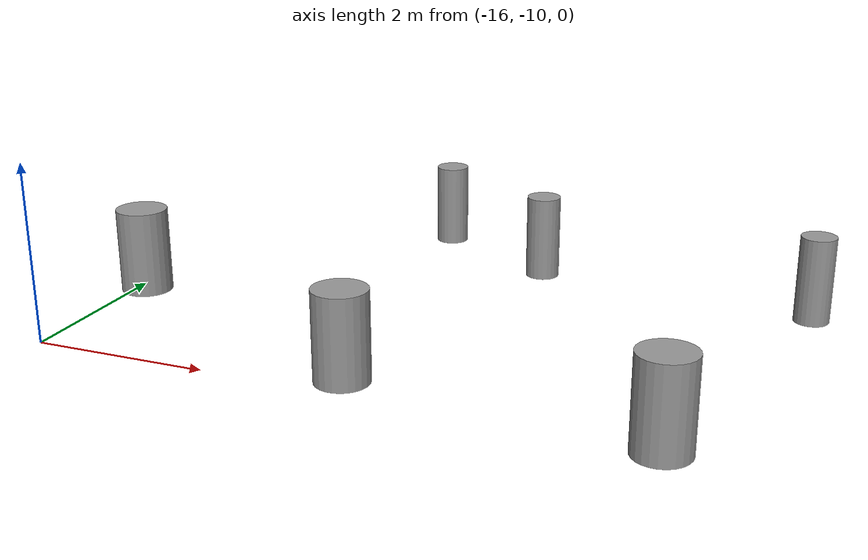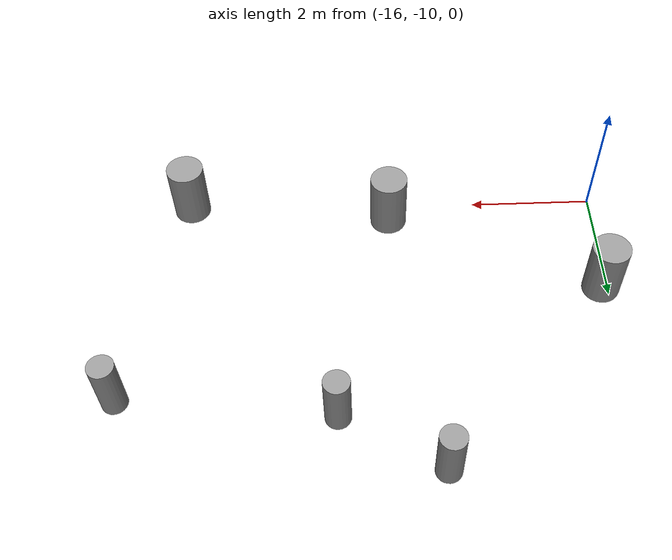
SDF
<sdf version="1.6">
 <world name="default">
  <model name="cylinder_left_clone_2_clone_15_clone_4">
   <link name="link_1">
    <inertial>
     <mass>1</mass>
     <inertia><ixx>0.145833</ixx><ixy>0</ixy><ixz>0</ixz><iyy>0.145833</iyy><iyz>0</iyz><izz>0.125</izz></inertia>
    </inertial>
    <visual name="visual">
     <geometry><cylinder><radius>0.3</radius><length>1</length></cylinder></geometry>
     <material>
      <lighting>1</lighting>
      <script><uri>file://media/materials/scripts/gazebo.material</uri><name>Gazebo/Grey</name></script>
      <ambient>0.3 0.3 0.3 1</ambient>
      <diffuse>0.7 0.7 0.7 1</diffuse>
      <specular>0.01 0.01 0.01 1</specular>
      <emissive>0 0 0 1</emissive>
      <shader type="vertex"><normal_map>__default__</normal_map></shader>
     </material>
    </visual>
    <collision name="collision">
     <geometry><cylinder><radius>0.3</radius><length>1</length></cylinder></geometry>
     <surface>
      <friction>
       <ode><mu>1</mu><mu2>1</mu2><fdir1>0 0 0</fdir1><slip1>0</slip1><slip2>0</slip2></ode>
       <torsional>
        <coefficient>1</coefficient>
        <patch_radius>0</patch_radius>
        <surface_radius>0</surface_radius>
        <use_patch_radius>1</use_patch_radius>
        <ode><slip>0</slip></ode>
       </torsional>
      </friction>
      <bounce><restitution_coefficient>0</restitution_coefficient><threshold>1e+06</threshold></bounce>
      <contact>
       <collide_without_contact>0</collide_without_contact>
       <collide_without_contact_bitmask>1</collide_without_contact_bitmask>
       <collide_bitmask>1</collide_bitmask>
       <ode>
        <soft_cfm>0</soft_cfm>
        <soft_erp>0.2</soft_erp>
        <kp>1e+13</kp>
        <kd>1</kd>
        <max_vel>0.01</max_vel>
        <min_depth>0</min_depth>
       </ode>
       <bullet>
        <split_impulse>1</split_impulse>
        <split_impulse_penetration_threshold>-0.01</split_impulse_penetration_threshold>
        <soft_cfm>0</soft_cfm>
        <soft_erp>0.2</soft_erp>
        <kp>1e+13</kp>
        <kd>1</kd>
       </bullet>
      </contact>
     </surface>
    </collision>
   </link>
   <static>0</static>
   <pose>-9.17817 -10.0654 0.49912 0 -0 1.95059</pose>
  </model>
  <model name="cylinder_left_clone_2_clone_15_clone_5">
   <link name="link_1">
    <inertial>
     <mass>1</mass>
     <inertia><ixx>0.145833</ixx><ixy>0</ixy><ixz>0</ixz><iyy>0.145833</iyy><iyz>0</iyz><izz>0.125</izz></inertia>
    </inertial>
    <visual name="visual">
     <geometry><cylinder><radius>0.3</radius><length>1</length></cylinder></geometry>
     <material>
      <lighting>1</lighting>
      <script><uri>file://media/materials/scripts/gazebo.material</uri><name>Gazebo/Grey</name></script>
      <ambient>0.3 0.3 0.3 1</ambient>
      <diffuse>0.7 0.7 0.7 1</diffuse>
      <specular>0.01 0.01 0.01 1</specular>
      <emissive>0 0 0 1</emissive>
      <shader type="vertex"><normal_map>__default__</normal_map></shader>
     </material>
    </visual>
    <collision name="collision">
     <geometry><cylinder><radius>0.3</radius><length>1</length></cylinder></geometry>
     <surface>
      <friction>
       <ode><mu>1</mu><mu2>1</mu2><fdir1>0 0 0</fdir1><slip1>0</slip1><slip2>0</slip2></ode>
       <torsional>
        <coefficient>1</coefficient>
        <patch_radius>0</patch_radius>
        <surface_radius>0</surface_radius>
        <use_patch_radius>1</use_patch_radius>
        <ode><slip>0</slip></ode>
       </torsional>
      </friction>
      <bounce><restitution_coefficient>0</restitution_coefficient><threshold>1e+06</threshold></bounce>
      <contact>
       <collide_without_contact>0</collide_without_contact>
       <collide_without_contact_bitmask>1</collide_without_contact_bitmask>
       <collide_bitmask>1</collide_bitmask>
       <ode>
        <soft_cfm>0</soft_cfm>
        <soft_erp>0.2</soft_erp>
        <kp>1e+13</kp>
        <kd>1</kd>
        <max_vel>0.01</max_vel>
        <min_depth>0</min_depth>
       </ode>
       <bullet>
        <split_impulse>1</split_impulse>
        <split_impulse_penetration_threshold>-0.01</split_impulse_penetration_threshold>
        <soft_cfm>0</soft_cfm>
        <soft_erp>0.2</soft_erp>
        <kp>1e+13</kp>
        <kd>1</kd>
       </bullet>
      </contact>
     </surface>
    </collision>
   </link>
   <static>0</static>
   <pose>-12.5267 -9.70524 0.49912 0 -0 1.95059</pose>
  </model>
  <model name="cylinder_left_clone_2_clone_15_clone_6">
   <link name="link_1">
    <inertial>
     <mass>1</mass>
     <inertia><ixx>0.145833</ixx><ixy>0</ixy><ixz>0</ixz><iyy>0.145833</iyy><iyz>0</iyz><izz>0.125</izz></inertia>
    </inertial>
    <visual name="visual">
     <geometry><cylinder><radius>0.3</radius><length>1</length></cylinder></geometry>
     <material>
      <lighting>1</lighting>
      <script><uri>file://media/materials/scripts/gazebo.material</uri><name>Gazebo/Grey</name></script>
      <ambient>0.3 0.3 0.3 1</ambient>
      <diffuse>0.7 0.7 0.7 1</diffuse>
      <specular>0.01 0.01 0.01 1</specular>
      <emissive>0 0 0 1</emissive>
      <shader type="vertex"><normal_map>__default__</normal_map></shader>
     </material>
    </visual>
    <collision name="collision">
     <geometry><cylinder><radius>0.3</radius><length>1</length></cylinder></geometry>
     <surface>
      <friction>
       <ode><mu>1</mu><mu2>1</mu2><fdir1>0 0 0</fdir1><slip1>0</slip1><slip2>0</slip2></ode>
       <torsional>
        <coefficient>1</coefficient>
        <patch_radius>0</patch_radius>
        <surface_radius>0</surface_radius>
        <use_patch_radius>1</use_patch_radius>
        <ode><slip>0</slip></ode>
       </torsional>
      </friction>
      <bounce><restitution_coefficient>0</restitution_coefficient><threshold>1e+06</threshold></bounce>
      <contact>
       <collide_without_contact>0</collide_without_contact>
       <collide_without_contact_bitmask>1</collide_without_contact_bitmask>
       <collide_bitmask>1</collide_bitmask>
       <ode>
        <soft_cfm>0</soft_cfm>
        <soft_erp>0.2</soft_erp>
        <kp>1e+13</kp>
        <kd>1</kd>
        <max_vel>0.01</max_vel>
        <min_depth>0</min_depth>
       </ode>
       <bullet>
        <split_impulse>1</split_impulse>
        <split_impulse_penetration_threshold>-0.01</split_impulse_penetration_threshold>
        <soft_cfm>0</soft_cfm>
        <soft_erp>0.2</soft_erp>
        <kp>1e+13</kp>
        <kd>1</kd>
       </bullet>
      </contact>
     </surface>
    </collision>
   </link>
   <static>0</static>
   <pose>-15.8852 -8.13249 0.49912 0 -0 1.95059</pose>
  </model>
  <model name="cylinder_right_clone_clone_clone_1">
   <link name="link_0">
    <inertial>
     <mass>1</mass>
     <inertia><ixx>0.145833</ixx><ixy>0</ixy><ixz>0</ixz><iyy>0.145833</iyy><iyz>0</iyz><izz>0.125</izz></inertia>
    </inertial>
    <visual name="visual">
     <geometry><cylinder><radius>0.2</radius><length>1</length></cylinder></geometry>
     <material>
      <lighting>1</lighting>
      <script><uri>file://media/materials/scripts/gazebo.material</uri><name>Gazebo/Grey</name></script>
      <ambient>0.3 0.3 0.3 1</ambient>
      <diffuse>0.7 0.7 0.7 1</diffuse>
      <specular>0.01 0.01 0.01 1</specular>
      <emissive>0 0 0 1</emissive>
      <shader type="vertex"><normal_map>__default__</normal_map></shader>
     </material>
    </visual>
    <collision name="collision">
     <geometry><cylinder><radius>0.2</radius><length>1</length></cylinder></geometry>
     <surface>
      <friction>
       <ode><mu>1</mu><mu2>1</mu2><fdir1>0 0 0</fdir1><slip1>0</slip1><slip2>0</slip2></ode>
       <torsional>
        <coefficient>1</coefficient>
        <patch_radius>0</patch_radius>
        <surface_radius>0</surface_radius>
        <use_patch_radius>1</use_patch_radius>
        <ode><slip>0</slip></ode>
       </torsional>
      </friction>
      <bounce><restitution_coefficient>0</restitution_coefficient><threshold>1e+06</threshold></bounce>
      <contact>
       <collide_without_contact>0</collide_without_contact>
       <collide_without_contact_bitmask>1</collide_without_contact_bitmask>
       <collide_bitmask>1</collide_bitmask>
       <ode>
        <soft_cfm>0</soft_cfm>
        <soft_erp>0.2</soft_erp>
        <kp>1e+13</kp>
        <kd>1</kd>
        <max_vel>0.01</max_vel>
        <min_depth>0</min_depth>
       </ode>
       <bullet>
        <split_impulse>1</split_impulse>
        <split_impulse_penetration_threshold>-0.01</split_impulse_penetration_threshold>
        <soft_cfm>0</soft_cfm>
        <soft_erp>0.2</soft_erp>
        <kp>1e+13</kp>
        <kd>1</kd>
       </bullet>
      </contact>
     </surface>
    </collision>
   </link>
   <static>0</static>
   <pose>-13.1615 -5.00634 0.49912 0 0 -0.982845</pose>
  </model>
  <model name="cylinder_right_clone_clone_clone_2">
   <link name="link_0">
    <inertial>
     <mass>1</mass>
     <inertia><ixx>0.145833</ixx><ixy>0</ixy><ixz>0</ixz><iyy>0.145833</iyy><iyz>0</iyz><izz>0.125</izz></inertia>
    </inertial>
    <visual name="visual">
     <geometry><cylinder><radius>0.2</radius><length>1</length></cylinder></geometry>
     <material>
      <lighting>1</lighting>
      <script><uri>file://media/materials/scripts/gazebo.material</uri><name>Gazebo/Grey</name></script>
      <ambient>0.3 0.3 0.3 1</ambient>
      <diffuse>0.7 0.7 0.7 1</diffuse>
      <specular>0.01 0.01 0.01 1</specular>
      <emissive>0 0 0 1</emissive>
      <shader type="vertex"><normal_map>__default__</normal_map></shader>
     </material>
    </visual>
    <collision name="collision">
     <geometry><cylinder><radius>0.2</radius><length>1</length></cylinder></geometry>
     <surface>
      <friction>
       <ode><mu>1</mu><mu2>1</mu2><fdir1>0 0 0</fdir1><slip1>0</slip1><slip2>0</slip2></ode>
       <torsional>
        <coefficient>1</coefficient>
        <patch_radius>0</patch_radius>
        <surface_radius>0</surface_radius>
        <use_patch_radius>1</use_patch_radius>
        <ode><slip>0</slip></ode>
       </torsional>
      </friction>
      <bounce><restitution_coefficient>0</restitution_coefficient><threshold>1e+06</threshold></bounce>
      <contact>
       <collide_without_contact>0</collide_without_contact>
       <collide_without_contact_bitmask>1</collide_without_contact_bitmask>
       <collide_bitmask>1</collide_bitmask>
       <ode>
        <soft_cfm>0</soft_cfm>
        <soft_erp>0.2</soft_erp>
        <kp>1e+13</kp>
        <kd>1</kd>
        <max_vel>0.01</max_vel>
        <min_depth>0</min_depth>
       </ode>
       <bullet>
        <split_impulse>1</split_impulse>
        <split_impulse_penetration_threshold>-0.01</split_impulse_penetration_threshold>
        <soft_cfm>0</soft_cfm>
        <soft_erp>0.2</soft_erp>
        <kp>1e+13</kp>
        <kd>1</kd>
       </bullet>
      </contact>
     </surface>
    </collision>
   </link>
   <static>0</static>
   <pose>-11.6187 -5.90912 0.49912 0 0 -0.982848</pose>
  </model>
  <model name="cylinder_right_clone_clone_clone_3">
   <link name="link_0">
    <inertial>
     <mass>1</mass>
     <inertia><ixx>0.145833</ixx><ixy>0</ixy><ixz>0</ixz><iyy>0.145833</iyy><iyz>0</iyz><izz>0.125</izz></inertia>
    </inertial>
    <visual name="visual">
     <geometry><cylinder><radius>0.2</radius><length>1</length></cylinder></geometry>
     <material>
      <lighting>1</lighting>
      <script><uri>file://media/materials/scripts/gazebo.material</uri><name>Gazebo/Grey</name></script>
      <ambient>0.3 0.3 0.3 1</ambient>
      <diffuse>0.7 0.7 0.7 1</diffuse>
      <specular>0.01 0.01 0.01 1</specular>
      <emissive>0 0 0 1</emissive>
      <shader type="vertex"><normal_map>__default__</normal_map></shader>
     </material>
    </visual>
    <collision name="collision">
     <geometry><cylinder><radius>0.2</radius><length>1</length></cylinder></geometry>
     <surface>
      <friction>
       <ode><mu>1</mu><mu2>1</mu2><fdir1>0 0 0</fdir1><slip1>0</slip1><slip2>0</slip2></ode>
       <torsional>
        <coefficient>1</coefficient>
        <patch_radius>0</patch_radius>
        <surface_radius>0</surface_radius>
        <use_patch_radius>1</use_patch_radius>
        <ode><slip>0</slip></ode>
       </torsional>
      </friction>
      <bounce><restitution_coefficient>0</restitution_coefficient><threshold>1e+06</threshold></bounce>
      <contact>
       <collide_without_contact>0</collide_without_contact>
       <collide_without_contact_bitmask>1</collide_without_contact_bitmask>
       <collide_bitmask>1</collide_bitmask>
       <ode>
        <soft_cfm>0</soft_cfm>
        <soft_erp>0.2</soft_erp>
        <kp>1e+13</kp>
        <kd>1</kd>
        <max_vel>0.01</max_vel>
        <min_depth>0</min_depth>
       </ode>
       <bullet>
        <split_impulse>1</split_impulse>
        <split_impulse_penetration_threshold>-0.01</split_impulse_penetration_threshold>
        <soft_cfm>0</soft_cfm>
        <soft_erp>0.2</soft_erp>
        <kp>1e+13</kp>
        <kd>1</kd>
       </bullet>
      </contact>
     </surface>
    </collision>
   </link>
   <static>0</static>
   <pose>-8.32691 -6.27661 0.49912 0 0 -0.982848</pose>
  </model>
 </world>
</sdf>
